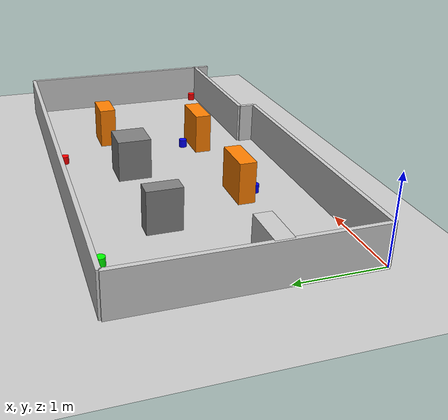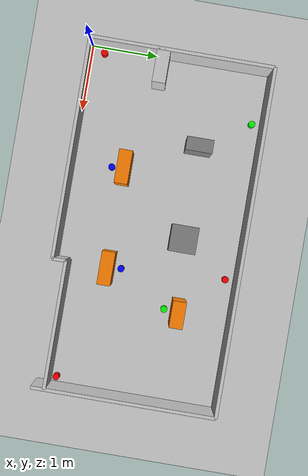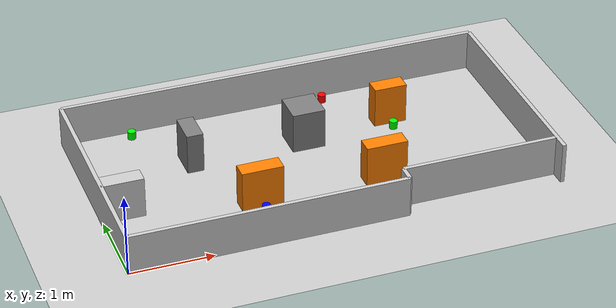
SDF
<?xml version="1.0" ?>
<sdf version="1.4">
  <world name="default">
    <include><uri>model://sun</uri></include>
    <include><uri>model://ground_plane</uri></include>

    <model name="wall_south_1">
      <static>true</static>
      <pose>1.65 0.0 0.25 0 0 0</pose>
      <link name="link">
        <collision name="collision"><geometry><box><size>3.3 0.05 0.5</size></box></geometry></collision>
        <visual name="visual"><geometry><box><size>3.3 0.05 0.5</size></box></geometry><material><ambient>0.8 0.8 0.8 1</ambient></material></visual>
      </link>
    </model>

    <model name="wall_south_2">
      <static>true</static>
      <pose>3.3 0.1 0.25 0 0 0</pose>
      <link name="link">
        <collision name="collision"><geometry><box><size>0.05 0.2 0.5</size></box></geometry></collision>
        <visual name="visual"><geometry><box><size>0.05 0.2 0.5</size></box></geometry><material><ambient>0.8 0.8 0.8 1</ambient></material></visual>
      </link>
    </model>

    <model name="wall_south_3">
      <static>true</static>
      <pose>4.255 0.2 0.25 0 0 0</pose>
      <link name="link">
        <collision name="collision"><geometry><box><size>1.91 0.05 0.5</size></box></geometry></collision>
        <visual name="visual"><geometry><box><size>1.91 0.05 0.5</size></box></geometry><material><ambient>0.8 0.8 0.8 1</ambient></material></visual>
      </link>
    </model>

    <model name="wall_north">
      <static>true</static>
      <pose>2.605 2.75 0.25 0 0 0</pose>
      <link name="link">
        <collision name="collision"><geometry><box><size>5.21 0.05 0.5</size></box></geometry></collision>
        <visual name="visual"><geometry><box><size>5.21 0.05 0.5</size></box></geometry><material><ambient>0.8 0.8 0.8 1</ambient></material></visual>
      </link>
    </model>

    <model name="wall_west">
      <static>true</static>
      <pose>0.0 1.375 0.25 0 0 0</pose>
      <link name="link">
        <collision name="collision"><geometry><box><size>0.05 2.75 0.5</size></box></geometry></collision>
        <visual name="visual"><geometry><box><size>0.05 2.75 0.5</size></box></geometry><material><ambient>0.8 0.8 0.8 1</ambient></material></visual>
      </link>
    </model>

    <model name="wall_east">
      <static>true</static>
      <pose>5.21 1.375 0.25 0 0 0</pose>
      <link name="link">
        <collision name="collision"><geometry><box><size>0.05 2.75 0.5</size></box></geometry></collision>
        <visual name="visual"><geometry><box><size>0.05 2.75 0.5</size></box></geometry><material><ambient>0.8 0.8 0.8 1</ambient></material></visual>
      </link>
    </model>

    <model name="waypoint_0">
      <static>true</static>
      <pose>0.1 0.2 0.05 0 0 0</pose>
      <link name="link">
        <visual name="visual"><geometry><cylinder><radius>0.05</radius><length>0.1</length></cylinder></geometry><material><ambient>1 0 0 1</ambient></material></visual>
      </link>
    </model>

    <model name="waypoint_1">
      <static>true</static>
      <pose>1.8 0.6 0.05 0 0 0</pose>
      <link name="link">
        <visual name="visual"><geometry><cylinder><radius>0.05</radius><length>0.1</length></cylinder></geometry><material><ambient>0 0 1 1</ambient></material></visual>
      </link>
    </model>

    <model name="waypoint_2">
      <static>true</static>
      <pose>3.31 1.0 0.05 0 0 0</pose>
      <link name="link">
        <visual name="visual"><geometry><cylinder><radius>0.05</radius><length>0.1</length></cylinder></geometry><material><ambient>0 0 1 1</ambient></material></visual>
      </link>
    </model>

    <model name="waypoint_3">
      <static>true</static>
      <pose>3.21 2.60 0.05 0 0 0</pose>
      <link name="link">
        <visual name="visual"><geometry><cylinder><radius>0.05</radius><length>0.1</length></cylinder></geometry><material><ambient>1 0 0 1</ambient></material></visual>
      </link>
    </model>

    <model name="waypoint_4">
      <static>true</static>
      <pose>5.1 0.3 0.05 0 0 0</pose>
      <link name="link">
        <visual name="visual"><geometry><cylinder><radius>0.05</radius><length>0.1</length></cylinder></geometry><material><ambient>1 0 0 1</ambient></material></visual>
      </link>
    </model>

    <model name="waypoint_5">
      <static>true</static>
      <pose>0.8 2.60 0.05 0 0 0</pose>
      <link name="link">
        <visual name="visual"><geometry><cylinder><radius>0.05</radius><length>0.1</length></cylinder></geometry><material><ambient>0 1 0 1</ambient></material></visual>
      </link>
    </model>

    <model name="waypoint_6">
      <static>true</static>
      <pose>3.81 1.75 0.05 0 0 0</pose>
      <link name="link">
        <visual name="visual"><geometry><cylinder><radius>0.05</radius><length>0.1</length></cylinder></geometry><material><ambient>0 1 0 1</ambient></material></visual>
      </link>
    </model>

    <model name="equipment_valve0">
      <static>true</static>
      <pose>1.8 0.8 0.25 0 0 0</pose>
      <link name="link">
        <collision name="collision">
          <geometry><box><size>0.5 0.2 0.5</size></box></geometry>
        </collision>
        <visual name="visual">
          <geometry><box><size>0.5 0.2 0.5</size></box></geometry>
          <material><ambient>1 0.5 0 1</ambient></material>
        </visual>
      </link>
    </model>

    <model name="equipment_valve1">
      <static>true</static>
      <pose>3.31 0.8 0.25 0 0 0</pose>
      <link name="link">
        <collision name="collision">
          <geometry><box><size>0.5 0.2 0.5</size></box></geometry>
        </collision>
        <visual name="visual">
          <geometry><box><size>0.5 0.2 0.5</size></box></geometry>
          <material><ambient>1 0.5 0 1</ambient></material>
        </visual>
      </link>
    </model>

    <model name="equipment_pump1">
      <static>true</static>
      <pose>3.81 1.95 0.25 0 0 0</pose>
      <link name="link">
        <collision name="collision">
          <geometry><box><size>0.4 0.2 0.5</size></box></geometry>
        </collision>
        <visual name="visual">
          <geometry><box><size>0.4 0.2 0.5</size></box></geometry>
          <material><ambient>1 0.5 0 1</ambient></material>
        </visual>
      </link>
    </model>

    <model name="obstacle_1">
      <static>true</static>
      <pose>1.3 1.85 0.25 0 0 0</pose>
      <link name="link">
        <collision name="collision">
          <geometry><box><size>0.2 0.4 0.5</size></box></geometry>
        </collision>
        <visual name="visual">
          <geometry><box><size>0.2 0.4 0.5</size></box></geometry>
          <material><ambient>0.5 0.5 0.5 1</ambient></material>
        </visual>
      </link>
    </model>

    <model name="obstacle_2">
      <static>true</static>
      <pose>2.7 1.85 0.25 0 0 0</pose>
      <link name="link">
        <collision name="collision">
          <geometry><box><size>0.4 0.4 0.5</size></box></geometry>
        </collision>
        <visual name="visual">
          <geometry><box><size>0.4 0.4 0.5</size></box></geometry>
          <material><ambient>0.5 0.5 0.5 1</ambient></material>
        </visual>
      </link>
    </model>

    <model name="wall_west_protrusion">
      <static>true</static>
      <pose>0.25 1.1 0.25 0 0 0</pose>
      <link name="link">
        <collision name="collision">
          <geometry><box><size>0.5 0.2 0.5</size></box></geometry>
        </collision>
        <visual name="visual">
          <geometry><box><size>0.5 0.2 0.5</size></box></geometry>
          <material><ambient>0.8 0.8 0.8 1</ambient></material>
        </visual>
      </link>
    </model>
  </world>
</sdf>
